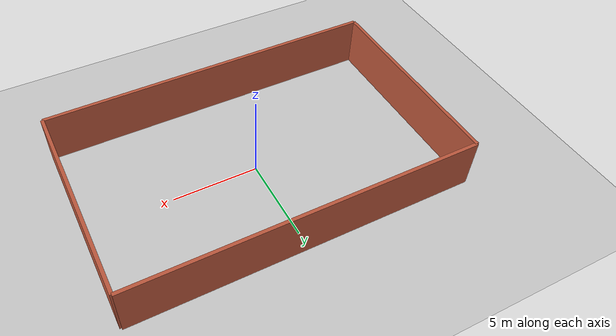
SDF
<sdf version="1.10">
 <world name="warehouse">
  <physics name="1ms" type="ignored">
   <max_step_size>0.001</max_step_size>
   <real_time_factor>1</real_time_factor>
   <real_time_update_rate>1000</real_time_update_rate>
  </physics>
  <plugin name="gz::sim::systems::Physics" filename="gz-sim-physics-system"/>
  <plugin name="gz::sim::systems::UserCommands" filename="gz-sim-user-commands-system"/>
  <plugin name="gz::sim::systems::SceneBroadcaster" filename="gz-sim-scene-broadcaster-system"/>
  <plugin name="gz::sim::systems::Contact" filename="gz-sim-contact-system"/>
  <gravity>0 0 -9.8000000000000007</gravity>
  <magnetic_field>5.5644999999999998e-06 2.2875799999999999e-05 -4.2388400000000002e-05</magnetic_field>
  <atmosphere type="adiabatic"/>
  <scene>
   <ambient>0.400000006 0.400000006 0.400000006 1</ambient>
   <background>0.699999988 0.699999988 0.699999988 1</background>
   <shadows>true</shadows>
  </scene>
  <plugin name="gz::sim::systems::Sensors" filename="gz-sim-sensors-system">
   <render_engine>ogre2</render_engine>
  </plugin>
  <model name="ground_plane">
   <static>true</static>
   <link name="link">
    <collision name="collision">
     <geometry><plane><normal>0 0 1</normal><size>100 100</size></plane></geometry>
    </collision>
    <visual name="visual">
     <geometry><plane><normal>0 0 1</normal><size>100 100</size></plane></geometry>
     <material>
      <ambient>0.800000012 0.800000012 0.800000012 1</ambient>
      <diffuse>0.800000012 0.800000012 0.800000012 1</diffuse>
      <specular>0.800000012 0.800000012 0.800000012 1</specular>
     </material>
    </visual>
    <inertial>
     <mass>1</mass>
     <inertia><ixx>1</ixx><ixy>0</ixy><ixz>0</ixz><iyy>1</iyy><iyz>0</iyz><izz>1</izz></inertia>
    </inertial>
   </link>
  </model>
  <model name="north_wall">
   <static>true</static>
   <pose>0 6 1.5 0 0 0</pose>
   <link name="link">
    <collision name="collision"><geometry><box><size>20 0.20000000000000001 3</size></box></geometry></collision>
    <visual name="visual">
     <geometry><box><size>20 0.20000000000000001 3</size></box></geometry>
     <material>
      <ambient>0.699999988 0.270000011 0.219999999 1</ambient>
      <diffuse>0.75 0.349999994 0.239999995 1</diffuse>
      <specular>0.200000003 0.200000003 0.200000003 1</specular>
     </material>
    </visual>
    <inertial>
     <mass>1</mass>
     <inertia><ixx>1</ixx><ixy>0</ixy><ixz>0</ixz><iyy>1</iyy><iyz>0</iyz><izz>1</izz></inertia>
    </inertial>
   </link>
  </model>
  <model name="south_wall">
   <static>true</static>
   <pose>0 -6 1.5 0 0 0</pose>
   <link name="link">
    <collision name="collision"><geometry><box><size>20 0.20000000000000001 3</size></box></geometry></collision>
    <visual name="visual">
     <geometry><box><size>20 0.20000000000000001 3</size></box></geometry>
     <material>
      <ambient>0.699999988 0.270000011 0.219999999 1</ambient>
      <diffuse>0.75 0.349999994 0.239999995 1</diffuse>
      <specular>0.200000003 0.200000003 0.200000003 1</specular>
     </material>
    </visual>
    <inertial>
     <mass>1</mass>
     <inertia><ixx>1</ixx><ixy>0</ixy><ixz>0</ixz><iyy>1</iyy><iyz>0</iyz><izz>1</izz></inertia>
    </inertial>
   </link>
  </model>
  <model name="east_wall">
   <static>true</static>
   <pose>10 0 1.5 0 0 0</pose>
   <link name="link">
    <collision name="collision"><geometry><box><size>0.20000000000000001 12 3</size></box></geometry></collision>
    <visual name="visual">
     <geometry><box><size>0.20000000000000001 12 3</size></box></geometry>
     <material>
      <ambient>0.699999988 0.270000011 0.219999999 1</ambient>
      <diffuse>0.75 0.349999994 0.239999995 1</diffuse>
      <specular>0.200000003 0.200000003 0.200000003 1</specular>
     </material>
    </visual>
    <inertial>
     <mass>1</mass>
     <inertia><ixx>1</ixx><ixy>0</ixy><ixz>0</ixz><iyy>1</iyy><iyz>0</iyz><izz>1</izz></inertia>
    </inertial>
   </link>
  </model>
  <model name="west_wall">
   <static>true</static>
   <pose>-10 0 1.5 0 0 0</pose>
   <link name="link">
    <collision name="collision"><geometry><box><size>0.20000000000000001 12 3</size></box></geometry></collision>
    <visual name="visual">
     <geometry><box><size>0.20000000000000001 12 3</size></box></geometry>
     <material>
      <ambient>0.699999988 0.270000011 0.219999999 1</ambient>
      <diffuse>0.75 0.349999994 0.239999995 1</diffuse>
      <specular>0.200000003 0.200000003 0.200000003 1</specular>
     </material>
    </visual>
    <inertial>
     <mass>1</mass>
     <inertia><ixx>1</ixx><ixy>0</ixy><ixz>0</ixz><iyy>1</iyy><iyz>0</iyz><izz>1</izz></inertia>
    </inertial>
   </link>
  </model>
  <light name="sun" type="directional">
   <pose>0 0 10 0 0 0</pose>
   <intensity>1</intensity>
   <direction>-0.5 0.10000000000000001 -0.90000000000000002</direction>
   <diffuse>0.800000012 0.800000012 0.800000012 1</diffuse>
   <specular>0.200000003 0.200000003 0.200000003 1</specular>
   <attenuation>
    <range>1000</range>
    <linear>0.01</linear>
    <constant>0.90000000000000002</constant>
    <quadratic>0.001</quadratic>
   </attenuation>
   <spot><inner_angle>0</inner_angle><outer_angle>0</outer_angle><falloff>0</falloff></spot>
  </light>
 </world>
</sdf>
